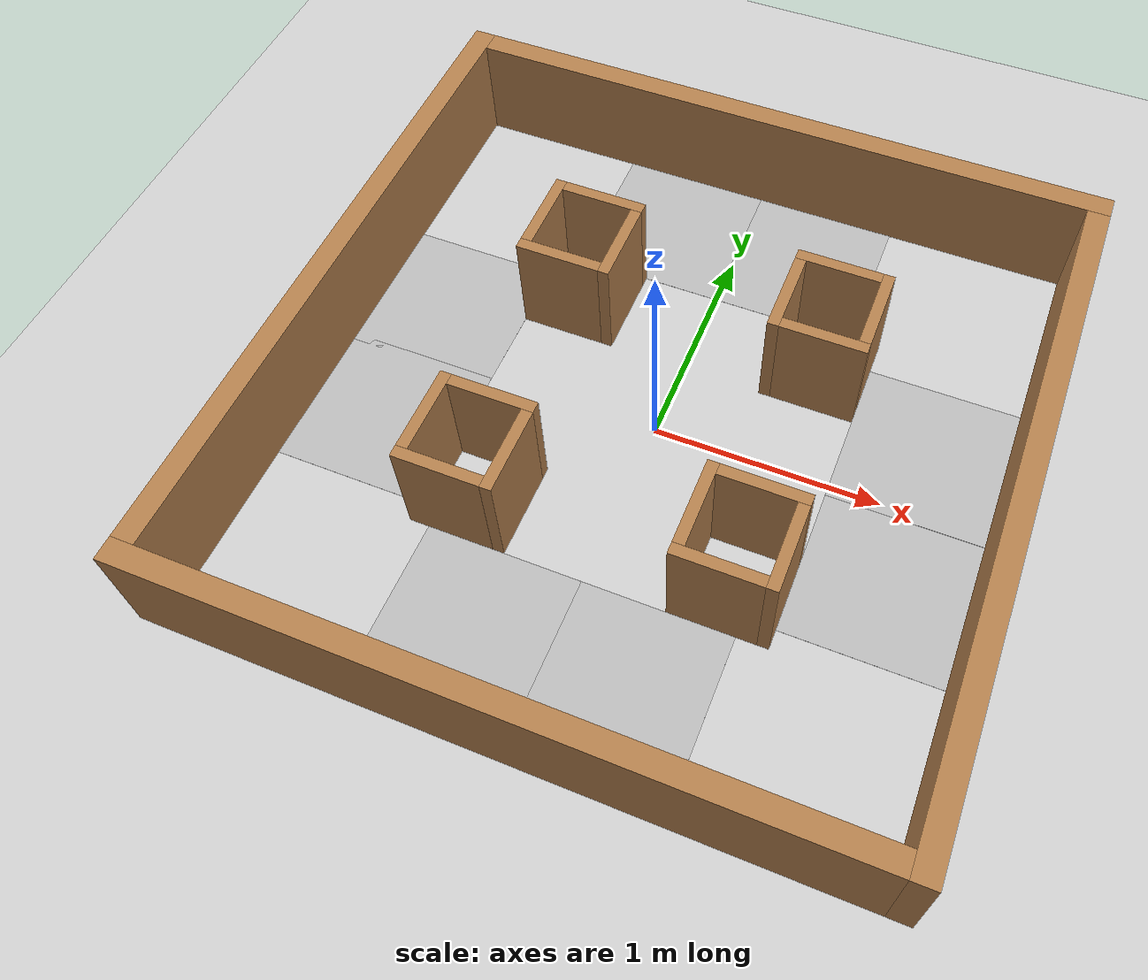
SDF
<sdf version="1.7">
 <world name="default">
  <light name="sun" type="directional">
   <pose>0 0 10 0 -0 0</pose>
   <diffuse>0.8 0.8 0.8 1</diffuse>
   <specular>0.2 0.2 0.2 1</specular>
   <attenuation>
    <range>1000</range>
    <constant>0.9</constant>
    <linear>0.01</linear>
    <quadratic>0.001</quadratic>
   </attenuation>
   <direction>-0.5 0.1 -0.9</direction>
   <spot><inner_angle>0</inner_angle><outer_angle>0</outer_angle><falloff>0</falloff></spot>
  </light>
  <model name="ground_plane">
   <static>1</static>
   <link name="link">
    <collision name="collision">
     <geometry><plane><normal>0 0 1</normal><size>100 100</size></plane></geometry>
     <surface><friction><ode><mu>100</mu><mu2>50</mu2></ode></friction></surface>
    </collision>
    <visual name="visual">
     <cast_shadows>0</cast_shadows>
     <geometry><plane><normal>0 0 1</normal><size>100 100</size></plane></geometry>
     <material>
      <script><uri>file://media/materials/scripts/gazebo.material</uri><name>Gazebo/Grey</name></script>
     </material>
    </visual>
   </link>
  </model>
  <gravity>0 0 -9.8</gravity>
  <magnetic_field>6e-06 2.3e-05 -4.2e-05</magnetic_field>
  <atmosphere type="adiabatic"/>
  <physics type="ode">
   <max_step_size>0.001</max_step_size>
   <real_time_factor>1</real_time_factor>
   <real_time_update_rate>1000</real_time_update_rate>
  </physics>
  <scene><ambient>0.4 0.4 0.4 1</ambient><background>0.7 0.7 0.7 1</background><shadows>1</shadows></scene>
  <spherical_coordinates>
   <surface_model>EARTH_WGS84</surface_model>
   <latitude_deg>0</latitude_deg>
   <longitude_deg>0</longitude_deg>
   <elevation>0</elevation>
   <heading_deg>0</heading_deg>
  </spherical_coordinates>
  <model name="project2.world">
   <link name="Wall_21">
    <collision name="Wall_21_Collision">
     <geometry><box><size>3 0.1 0.5</size></box></geometry>
     <pose>0 0 0.25 0 -0 0</pose>
    </collision>
    <visual name="Wall_21_Visual">
     <pose>0 0 0.25 0 -0 0</pose>
     <geometry><box><size>3 0.1 0.5</size></box></geometry>
     <material>
      <script><uri>file://media/materials/scripts/gazebo.material</uri><name>Gazebo/Wood</name></script>
      <ambient>1 1 1 1</ambient>
     </material>
     <meta><layer>0</layer></meta>
    </visual>
    <pose>1.5 -0.05 0 0 -0 -1.5708</pose>
   </link>
   <link name="Wall_23">
    <collision name="Wall_23_Collision">
     <geometry><box><size>3 0.1 0.5</size></box></geometry>
     <pose>0 0 0.25 0 -0 0</pose>
    </collision>
    <visual name="Wall_23_Visual">
     <pose>0 0 0.25 0 -0 0</pose>
     <geometry><box><size>3 0.1 0.5</size></box></geometry>
     <material>
      <script><uri>file://media/materials/scripts/gazebo.material</uri><name>Gazebo/Wood</name></script>
      <ambient>1 1 1 1</ambient>
     </material>
     <meta><layer>0</layer></meta>
    </visual>
    <pose>-0.05 -1.5 0 0 -0 0</pose>
   </link>
   <link name="Wall_25">
    <collision name="Wall_25_Collision">
     <geometry><box><size>3 0.1 0.5</size></box></geometry>
     <pose>0 0 0.25 0 -0 0</pose>
    </collision>
    <visual name="Wall_25_Visual">
     <pose>0 0 0.25 0 -0 0</pose>
     <geometry><box><size>3 0.1 0.5</size></box></geometry>
     <material>
      <script><uri>file://media/materials/scripts/gazebo.material</uri><name>Gazebo/Wood</name></script>
      <ambient>1 1 1 1</ambient>
     </material>
     <meta><layer>0</layer></meta>
    </visual>
    <pose>0.05 1.5 0 0 -0 0</pose>
   </link>
   <link name="Wall_27">
    <collision name="Wall_27_Collision">
     <geometry><box><size>3 0.1 0.5</size></box></geometry>
     <pose>0 0 0.25 0 -0 0</pose>
    </collision>
    <visual name="Wall_27_Visual">
     <pose>0 0 0.25 0 -0 0</pose>
     <geometry><box><size>3 0.1 0.5</size></box></geometry>
     <material>
      <script><uri>file://media/materials/scripts/gazebo.material</uri><name>Gazebo/Wood</name></script>
      <ambient>1 1 1 1</ambient>
     </material>
     <meta><layer>0</layer></meta>
    </visual>
    <pose>-1.5 0.05 0 0 -0 1.5708</pose>
   </link>
   <link name="Wall_29">
    <collision name="Wall_29_Collision">
     <geometry><box><size>0.375 0.05 0.5</size></box></geometry>
     <pose>0 0 0.25 0 -0 0</pose>
    </collision>
    <visual name="Wall_29_Visual">
     <pose>0 0 0.25 0 -0 0</pose>
     <geometry><box><size>0.375 0.05 0.5</size></box></geometry>
     <material>
      <script><uri>file://media/materials/scripts/gazebo.material</uri><name>Gazebo/Wood</name></script>
      <ambient>1 1 1 1</ambient>
     </material>
     <meta><layer>0</layer></meta>
    </visual>
    <pose>0.375 0.5375 0 0 -0 -1.5708</pose>
   </link>
   <link name="Wall_31">
    <collision name="Wall_31_Collision">
     <geometry><box><size>0.375 0.05 0.5</size></box></geometry>
     <pose>0 0 0.25 0 -0 0</pose>
    </collision>
    <visual name="Wall_31_Visual">
     <pose>0 0 0.25 0 -0 0</pose>
     <geometry><box><size>0.375 0.05 0.5</size></box></geometry>
     <material>
      <script><uri>file://media/materials/scripts/gazebo.material</uri><name>Gazebo/Wood</name></script>
      <ambient>1 1 1 1</ambient>
     </material>
     <meta><layer>0</layer></meta>
    </visual>
    <pose>0.5375 0.75 0 0 -0 0</pose>
   </link>
   <link name="Wall_38">
    <collision name="Wall_38_Collision">
     <geometry><box><size>0.375 0.05 0.5</size></box></geometry>
     <pose>0 0 0.25 0 -0 0</pose>
    </collision>
    <visual name="Wall_38_Visual">
     <pose>0 0 0.25 0 -0 0</pose>
     <geometry><box><size>0.375 0.05 0.5</size></box></geometry>
     <material>
      <script><uri>file://media/materials/scripts/gazebo.material</uri><name>Gazebo/Wood</name></script>
      <ambient>1 1 1 1</ambient>
     </material>
     <meta><layer>0</layer></meta>
    </visual>
    <pose>0.5875 0.375 0 0 -0 0</pose>
   </link>
   <link name="Wall_40">
    <collision name="Wall_40_Collision">
     <geometry><box><size>0.375 0.05 0.5</size></box></geometry>
     <pose>0 0 0.25 0 -0 0</pose>
    </collision>
    <visual name="Wall_40_Visual">
     <pose>0 0 0.25 0 -0 0</pose>
     <geometry><box><size>0.375 0.05 0.5</size></box></geometry>
     <material>
      <script><uri>file://media/materials/scripts/gazebo.material</uri><name>Gazebo/Wood</name></script>
      <ambient>1 1 1 1</ambient>
     </material>
     <meta><layer>0</layer></meta>
    </visual>
    <pose>0.75 0.5875 0 0 -0 1.5708</pose>
   </link>
   <link name="Wall_42">
    <collision name="Wall_42_Collision">
     <geometry><box><size>0.375 0.05 0.5</size></box></geometry>
     <pose>0 0 0.25 0 -0 0</pose>
    </collision>
    <visual name="Wall_42_Visual">
     <pose>0 0 0.25 0 -0 0</pose>
     <geometry><box><size>0.375 0.05 0.5</size></box></geometry>
     <material>
      <script><uri>file://media/materials/scripts/gazebo.material</uri><name>Gazebo/Wood</name></script>
      <ambient>1 1 1 1</ambient>
     </material>
     <meta><layer>0</layer></meta>
    </visual>
    <pose>-0.5375 0.75 0 0 -0 3.14159</pose>
   </link>
   <link name="Wall_44">
    <collision name="Wall_44_Collision">
     <geometry><box><size>0.375 0.05 0.5</size></box></geometry>
     <pose>0 0 0.25 0 -0 0</pose>
    </collision>
    <visual name="Wall_44_Visual">
     <pose>0 0 0.25 0 -0 0</pose>
     <geometry><box><size>0.375 0.05 0.5</size></box></geometry>
     <material>
      <script><uri>file://media/materials/scripts/gazebo.material</uri><name>Gazebo/Wood</name></script>
      <ambient>1 1 1 1</ambient>
     </material>
     <meta><layer>0</layer></meta>
    </visual>
    <pose>-0.5875 0.375 0 0 -0 3.14159</pose>
   </link>
   <link name="Wall_47">
    <collision name="Wall_47_Collision">
     <geometry><box><size>0.375 0.05 0.5</size></box></geometry>
     <pose>0 0 0.25 0 -0 0</pose>
    </collision>
    <visual name="Wall_47_Visual">
     <pose>0 0 0.25 0 -0 0</pose>
     <geometry><box><size>0.375 0.05 0.5</size></box></geometry>
     <material>
      <script><uri>file://media/materials/scripts/gazebo.material</uri><name>Gazebo/Wood</name></script>
      <ambient>1 1 1 1</ambient>
     </material>
     <meta><layer>0</layer></meta>
    </visual>
    <pose>-0.75 0.5875 0 0 -0 1.5708</pose>
   </link>
   <link name="Wall_49">
    <collision name="Wall_49_Collision">
     <geometry><box><size>0.375 0.05 0.5</size></box></geometry>
     <pose>0 0 0.25 0 -0 0</pose>
    </collision>
    <visual name="Wall_49_Visual">
     <pose>0 0 0.25 0 -0 0</pose>
     <geometry><box><size>0.375 0.05 0.5</size></box></geometry>
     <material>
      <script><uri>file://media/materials/scripts/gazebo.material</uri><name>Gazebo/Wood</name></script>
      <ambient>1 1 1 1</ambient>
     </material>
     <meta><layer>0</layer></meta>
    </visual>
    <pose>-0.375 0.5375 0 0 -0 -1.5708</pose>
   </link>
   <link name="Wall_51">
    <collision name="Wall_51_Collision">
     <geometry><box><size>0.375 0.05 0.5</size></box></geometry>
     <pose>0 0 0.25 0 -0 0</pose>
    </collision>
    <visual name="Wall_51_Visual">
     <pose>0 0 0.25 0 -0 0</pose>
     <geometry><box><size>0.375 0.05 0.5</size></box></geometry>
     <material>
      <script><uri>file://media/materials/scripts/gazebo.material</uri><name>Gazebo/Wood</name></script>
      <ambient>1 1 1 1</ambient>
     </material>
     <meta><layer>0</layer></meta>
    </visual>
    <pose>-0.75 -0.5375 0 0 -0 1.5708</pose>
   </link>
   <link name="Wall_53">
    <collision name="Wall_53_Collision">
     <geometry><box><size>0.375 0.05 0.5</size></box></geometry>
     <pose>0 0 0.25 0 -0 0</pose>
    </collision>
    <visual name="Wall_53_Visual">
     <pose>0 0 0.25 0 -0 0</pose>
     <geometry><box><size>0.375 0.05 0.5</size></box></geometry>
     <material>
      <script><uri>file://media/materials/scripts/gazebo.material</uri><name>Gazebo/Wood</name></script>
      <ambient>1 1 1 1</ambient>
     </material>
     <meta><layer>0</layer></meta>
    </visual>
    <pose>-0.5375 -0.375 0 0 -0 3.14159</pose>
   </link>
   <link name="Wall_55">
    <collision name="Wall_55_Collision">
     <geometry><box><size>0.375 0.05 0.5</size></box></geometry>
     <pose>0 0 0.25 0 -0 0</pose>
    </collision>
    <visual name="Wall_55_Visual">
     <pose>0 0 0.25 0 -0 0</pose>
     <geometry><box><size>0.375 0.05 0.5</size></box></geometry>
     <material>
      <script><uri>file://media/materials/scripts/gazebo.material</uri><name>Gazebo/Wood</name></script>
      <ambient>1 1 1 1</ambient>
     </material>
     <meta><layer>0</layer></meta>
    </visual>
    <pose>-0.375 -0.5875 0 0 -0 -1.5708</pose>
   </link>
   <link name="Wall_58">
    <collision name="Wall_58_Collision">
     <geometry><box><size>0.375 0.05 0.5</size></box></geometry>
     <pose>0 0 0.25 0 -0 0</pose>
    </collision>
    <visual name="Wall_58_Visual">
     <pose>0 0 0.25 0 -0 0</pose>
     <geometry><box><size>0.375 0.05 0.5</size></box></geometry>
     <material>
      <script><uri>file://media/materials/scripts/gazebo.material</uri><name>Gazebo/Wood</name></script>
      <ambient>1 1 1 1</ambient>
     </material>
     <meta><layer>0</layer></meta>
    </visual>
    <pose>-0.5875 -0.75 0 0 -0 3.14159</pose>
   </link>
   <link name="Wall_60">
    <collision name="Wall_60_Collision">
     <geometry><box><size>0.375 0.05 0.5</size></box></geometry>
     <pose>0 0 0.25 0 -0 0</pose>
    </collision>
    <visual name="Wall_60_Visual">
     <pose>0 0 0.25 0 -0 0</pose>
     <geometry><box><size>0.375 0.05 0.5</size></box></geometry>
     <material>
      <script><uri>file://media/materials/scripts/gazebo.material</uri><name>Gazebo/Wood</name></script>
      <ambient>1 1 1 1</ambient>
     </material>
     <meta><layer>0</layer></meta>
    </visual>
    <pose>0.5875 -0.375 0 0 -0 0</pose>
   </link>
   <link name="Wall_62">
    <collision name="Wall_62_Collision">
     <geometry><box><size>0.375 0.05 0.5</size></box></geometry>
     <pose>0 0 0.25 0 -0 0</pose>
    </collision>
    <visual name="Wall_62_Visual">
     <pose>0 0 0.25 0 -0 0</pose>
     <geometry><box><size>0.375 0.05 0.5</size></box></geometry>
     <material>
      <script><uri>file://media/materials/scripts/gazebo.material</uri><name>Gazebo/Wood</name></script>
      <ambient>1 1 1 1</ambient>
     </material>
     <meta><layer>0</layer></meta>
    </visual>
    <pose>0.375 -0.5375 0 0 -0 -1.5708</pose>
   </link>
   <link name="Wall_64">
    <collision name="Wall_64_Collision">
     <geometry><box><size>0.375 0.05 0.5</size></box></geometry>
     <pose>0 0 0.25 0 -0 0</pose>
    </collision>
    <visual name="Wall_64_Visual">
     <pose>0 0 0.25 0 -0 0</pose>
     <geometry><box><size>0.375 0.05 0.5</size></box></geometry>
     <material>
      <script><uri>file://media/materials/scripts/gazebo.material</uri><name>Gazebo/Wood</name></script>
      <ambient>1 1 1 1</ambient>
     </material>
     <meta><layer>0</layer></meta>
    </visual>
    <pose>0.75 -0.5875 0 0 -0 -1.5708</pose>
   </link>
   <link name="Wall_67">
    <collision name="Wall_67_Collision">
     <geometry><box><size>0.375 0.05 0.5</size></box></geometry>
     <pose>0 0 0.25 0 -0 0</pose>
    </collision>
    <visual name="Wall_67_Visual">
     <pose>0 0 0.25 0 -0 0</pose>
     <geometry><box><size>0.375 0.05 0.5</size></box></geometry>
     <material>
      <script><uri>file://media/materials/scripts/gazebo.material</uri><name>Gazebo/Wood</name></script>
      <ambient>1 1 1 1</ambient>
     </material>
     <meta><layer>0</layer></meta>
    </visual>
    <pose>0.5375 -0.75 0 0 -0 0</pose>
   </link>
   <static>1</static>
  </model>
  <model name="project2_straight_road">
   <static>1</static>
   <link name="link">
    <collision name="collision">
     <geometry><plane><normal>0 0 1</normal><size>0.68 0.68</size></plane></geometry>
     <surface><friction><ode><mu>75</mu><mu2>75</mu2></ode></friction></surface>
    </collision>
    <visual name="visual">
     <cast_shadows>0</cast_shadows>
     <geometry><plane><normal>0 0 1</normal><size>0.68 0.68</size></plane></geometry>
     <material>
      <script>
       <uri>model://project2_straight_road/materials/scripts</uri>
       <uri>model://project2_straight_road/materials/textures</uri>
       <name>project2_straight_road/Image</name>
      </script>
     </material>
    </visual>
   </link>
   <pose>1.115 0.3 0.002 0 -0 0</pose>
  </model>
  <model name="project2_straight_road_0">
   <static>1</static>
   <link name="link">
    <collision name="collision">
     <geometry><plane><normal>0 0 1</normal><size>0.68 0.68</size></plane></geometry>
     <surface><friction><ode><mu>75</mu><mu2>75</mu2></ode></friction></surface>
    </collision>
    <visual name="visual">
     <cast_shadows>0</cast_shadows>
     <geometry><plane><normal>0 0 1</normal><size>0.68 0.68</size></plane></geometry>
     <material>
      <script>
       <uri>model://project2_straight_road/materials/scripts</uri>
       <uri>model://project2_straight_road/materials/textures</uri>
       <name>project2_straight_road/Image</name>
      </script>
     </material>
    </visual>
   </link>
   <pose>1.115 -0.35 0.001 0 -0 0</pose>
  </model>
  <model name="project2_straight_road_1">
   <static>1</static>
   <link name="link">
    <collision name="collision">
     <geometry><plane><normal>0 0 1</normal><size>0.68 0.68</size></plane></geometry>
     <surface><friction><ode><mu>75</mu><mu2>75</mu2></ode></friction></surface>
    </collision>
    <visual name="visual">
     <cast_shadows>0</cast_shadows>
     <geometry><plane><normal>0 0 1</normal><size>0.68 0.68</size></plane></geometry>
     <material>
      <script>
       <uri>model://project2_straight_road/materials/scripts</uri>
       <uri>model://project2_straight_road/materials/textures</uri>
       <name>project2_straight_road/Image</name>
      </script>
     </material>
    </visual>
   </link>
   <pose>-1.115 -0.35 0.001 0 -0 0</pose>
  </model>
  <model name="project2_straight_road_2">
   <static>1</static>
   <link name="link">
    <collision name="collision">
     <geometry><plane><normal>0 0 1</normal><size>0.68 0.68</size></plane></geometry>
     <surface><friction><ode><mu>75</mu><mu2>75</mu2></ode></friction></surface>
    </collision>
    <visual name="visual">
     <cast_shadows>0</cast_shadows>
     <geometry><plane><normal>0 0 1</normal><size>0.68 0.68</size></plane></geometry>
     <material>
      <script>
       <uri>model://project2_straight_road/materials/scripts</uri>
       <uri>model://project2_straight_road/materials/textures</uri>
       <name>project2_straight_road/Image</name>
      </script>
     </material>
    </visual>
   </link>
   <pose>-1.115 0.3 0.001 0 -0 0</pose>
  </model>
  <model name="project2_straight_road_3">
   <static>1</static>
   <link name="link">
    <collision name="collision">
     <geometry><plane><normal>0 0 1</normal><size>0.68 0.68</size></plane></geometry>
     <surface><friction><ode><mu>75</mu><mu2>75</mu2></ode></friction></surface>
    </collision>
    <visual name="visual">
     <cast_shadows>0</cast_shadows>
     <geometry><plane><normal>0 0 1</normal><size>0.68 0.68</size></plane></geometry>
     <material>
      <script>
       <uri>model://project2_straight_road/materials/scripts</uri>
       <uri>model://project2_straight_road/materials/textures</uri>
       <name>project2_straight_road/Image</name>
      </script>
     </material>
    </visual>
   </link>
   <pose>-0.35 -1.115 0.001 0 -0 1.57075</pose>
  </model>
  <model name="project2_straight_road_4">
   <static>1</static>
   <link name="link">
    <collision name="collision">
     <geometry><plane><normal>0 0 1</normal><size>0.68 0.68</size></plane></geometry>
     <surface><friction><ode><mu>75</mu><mu2>75</mu2></ode></friction></surface>
    </collision>
    <visual name="visual">
     <cast_shadows>0</cast_shadows>
     <geometry><plane><normal>0 0 1</normal><size>0.68 0.68</size></plane></geometry>
     <material>
      <script>
       <uri>model://project2_straight_road/materials/scripts</uri>
       <uri>model://project2_straight_road/materials/textures</uri>
       <name>project2_straight_road/Image</name>
      </script>
     </material>
    </visual>
   </link>
   <pose>-0.35 1.115 0.001 0 -0 1.57075</pose>
  </model>
  <model name="project2_straight_road_5">
   <static>1</static>
   <link name="link">
    <collision name="collision">
     <geometry><plane><normal>0 0 1</normal><size>0.68 0.68</size></plane></geometry>
     <surface><friction><ode><mu>75</mu><mu2>75</mu2></ode></friction></surface>
    </collision>
    <visual name="visual">
     <cast_shadows>0</cast_shadows>
     <geometry><plane><normal>0 0 1</normal><size>0.68 0.68</size></plane></geometry>
     <material>
      <script>
       <uri>model://project2_straight_road/materials/scripts</uri>
       <uri>model://project2_straight_road/materials/textures</uri>
       <name>project2_straight_road/Image</name>
      </script>
     </material>
    </visual>
   </link>
   <pose>0.3 1.115 0.001 0 -0 1.57057</pose>
  </model>
  <model name="project2_straight_road_6">
   <static>1</static>
   <link name="link">
    <collision name="collision">
     <geometry><plane><normal>0 0 1</normal><size>0.68 0.68</size></plane></geometry>
     <surface><friction><ode><mu>75</mu><mu2>75</mu2></ode></friction></surface>
    </collision>
    <visual name="visual">
     <cast_shadows>0</cast_shadows>
     <geometry><plane><normal>0 0 1</normal><size>0.68 0.68</size></plane></geometry>
     <material>
      <script>
       <uri>model://project2_straight_road/materials/scripts</uri>
       <uri>model://project2_straight_road/materials/textures</uri>
       <name>project2_straight_road/Image</name>
      </script>
     </material>
    </visual>
   </link>
   <pose>0.3 -1.115 0.001 0 -0 1.57075</pose>
  </model>
 </world>
</sdf>
